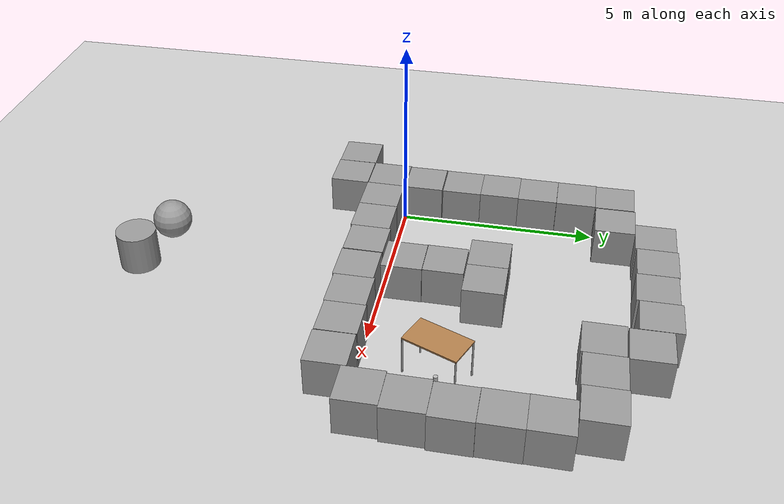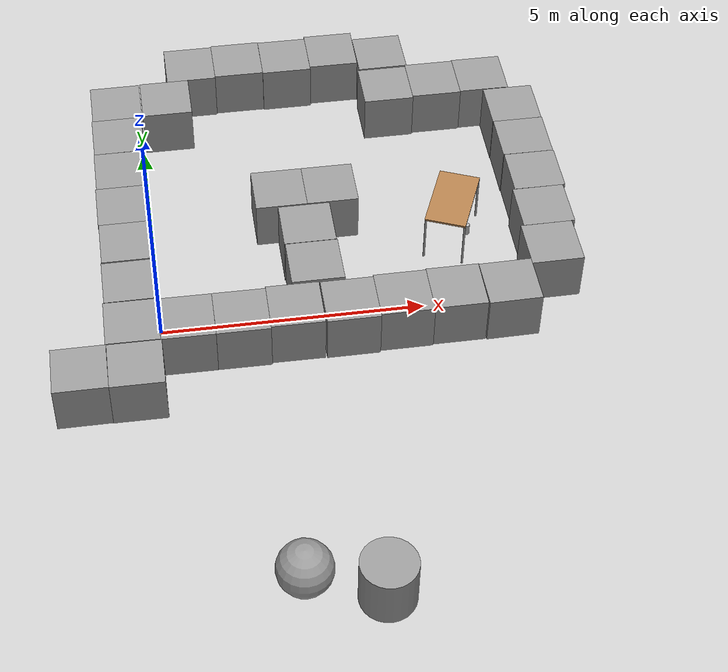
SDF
<sdf version="1.6">
 <world name="default">
  <light name="sun" type="directional">
   <pose>0 0 10 0 -0 0</pose>
   <diffuse>0.8 0.8 0.8 1</diffuse>
   <specular>0.1 0.1 0.1 1</specular>
   <attenuation>
    <range>1000</range>
    <constant>0.9</constant>
    <linear>0.01</linear>
    <quadratic>0.001</quadratic>
   </attenuation>
   <direction>-0.5 0.5 -1</direction>
  </light>
  <model name="ground_plane">
   <static>1</static>
   <link name="link">
    <collision name="collision">
     <geometry><plane><normal>0 0 1</normal><size>100 100</size></plane></geometry>
     <surface><friction><ode><mu>100</mu><mu2>50</mu2></ode></friction></surface>
    </collision>
    <visual name="visual">
     <cast_shadows>0</cast_shadows>
     <geometry><plane><normal>0 0 1</normal><size>100 100</size></plane></geometry>
     <material>
      <script><uri>file://media/materials/scripts/gazebo.material</uri><name>Gazebo/Grey</name></script>
     </material>
    </visual>
   </link>
  </model>
  <gravity>0 0 -9.8</gravity>
  <magnetic_field>6e-06 2.3e-05 -4.2e-05</magnetic_field>
  <atmosphere type="adiabatic"/>
  <physics name="default_physics" default="0" type="ode">
   <max_step_size>0.001</max_step_size>
   <real_time_factor>1</real_time_factor>
   <real_time_update_rate>1000</real_time_update_rate>
  </physics>
  <scene><ambient>0.4 0.4 0.4 1</ambient><background>0.7 0.7 0.7 1</background><shadows>1</shadows></scene>
  <spherical_coordinates>
   <surface_model>EARTH_WGS84</surface_model>
   <latitude_deg>0</latitude_deg>
   <longitude_deg>0</longitude_deg>
   <elevation>0</elevation>
   <heading_deg>0</heading_deg>
  </spherical_coordinates>
  <model name="unit_box_0">
   <pose>0.476189 -0.54612 0.499995 -1e-05 -0 -0.007371</pose>
   <link name="link">
    <inertial>
     <mass>1</mass>
     <inertia>
      <ixx>0.166667</ixx>
      <ixy>0</ixy>
      <ixz>0</ixz>
      <iyy>0.166667</iyy>
      <iyz>0</iyz>
      <izz>0.166667</izz>
     </inertia>
    </inertial>
    <collision name="collision"><geometry><box><size>1 1 1</size></box></geometry></collision>
    <visual name="visual">
     <geometry><box><size>1 1 1</size></box></geometry>
     <material>
      <script><name>Gazebo/Grey</name><uri>file://media/materials/scripts/gazebo.material</uri></script>
     </material>
    </visual>
   </link>
  </model>
  <model name="unit_box_1">
   <pose>-0.511666 -1.54013 0.499995 1e-05 -0 -0.004873</pose>
   <link name="link">
    <inertial>
     <mass>1</mass>
     <inertia>
      <ixx>0.166667</ixx>
      <ixy>0</ixy>
      <ixz>0</ixz>
      <iyy>0.166667</iyy>
      <iyz>0</iyz>
      <izz>0.166667</izz>
     </inertia>
    </inertial>
    <collision name="collision"><geometry><box><size>1 1 1</size></box></geometry></collision>
    <visual name="visual">
     <geometry><box><size>1 1 1</size></box></geometry>
     <material>
      <script><name>Gazebo/Grey</name><uri>file://media/materials/scripts/gazebo.material</uri></script>
     </material>
    </visual>
   </link>
  </model>
  <model name="unit_box_2">
   <pose>-1.5144 -1.5289 0.499995 -0 -1e-05 0.000587</pose>
   <link name="link">
    <inertial>
     <mass>1</mass>
     <inertia>
      <ixx>0.166667</ixx>
      <ixy>0</ixy>
      <ixz>0</ixz>
      <iyy>0.166667</iyy>
      <iyz>0</iyz>
      <izz>0.166667</izz>
     </inertia>
    </inertial>
    <collision name="collision"><geometry><box><size>1 1 1</size></box></geometry></collision>
    <visual name="visual">
     <geometry><box><size>1 1 1</size></box></geometry>
     <material>
      <script><name>Gazebo/Grey</name><uri>file://media/materials/scripts/gazebo.material</uri></script>
     </material>
    </visual>
   </link>
  </model>
  <model name="unit_box_3">
   <pose>1.47643 -0.550553 0.499995 -1e-05 -0 -0.006875</pose>
   <link name="link">
    <inertial>
     <mass>1</mass>
     <inertia>
      <ixx>0.166667</ixx>
      <ixy>0</ixy>
      <ixz>0</ixz>
      <iyy>0.166667</iyy>
      <iyz>0</iyz>
      <izz>0.166667</izz>
     </inertia>
    </inertial>
    <collision name="collision"><geometry><box><size>1 1 1</size></box></geometry></collision>
    <visual name="visual">
     <geometry><box><size>1 1 1</size></box></geometry>
     <material>
      <script><name>Gazebo/Grey</name><uri>file://media/materials/scripts/gazebo.material</uri></script>
     </material>
    </visual>
   </link>
  </model>
  <model name="unit_box_4">
   <pose>-0.52389 -0.525497 0.499995 0 1e-05 -0.007129</pose>
   <link name="link">
    <inertial>
     <mass>1</mass>
     <inertia>
      <ixx>0.166667</ixx>
      <ixy>0</ixy>
      <ixz>0</ixz>
      <iyy>0.166667</iyy>
      <iyz>0</iyz>
      <izz>0.166667</izz>
     </inertia>
    </inertial>
    <collision name="collision"><geometry><box><size>1 1 1</size></box></geometry></collision>
    <visual name="visual">
     <geometry><box><size>1 1 1</size></box></geometry>
     <material>
      <script><name>Gazebo/Grey</name><uri>file://media/materials/scripts/gazebo.material</uri></script>
     </material>
    </visual>
   </link>
  </model>
  <model name="unit_box_5">
   <pose>-0.499013 0.486937 0.499995 1e-05 -0 0.002113</pose>
   <link name="link">
    <inertial>
     <mass>1</mass>
     <inertia>
      <ixx>0.166667</ixx>
      <ixy>0</ixy>
      <ixz>0</ixz>
      <iyy>0.166667</iyy>
      <iyz>0</iyz>
      <izz>0.166667</izz>
     </inertia>
    </inertial>
    <collision name="collision"><geometry><box><size>1 1 1</size></box></geometry></collision>
    <visual name="visual">
     <geometry><box><size>1 1 1</size></box></geometry>
     <material>
      <script><name>Gazebo/Grey</name><uri>file://media/materials/scripts/gazebo.material</uri></script>
     </material>
    </visual>
   </link>
  </model>
  <model name="unit_box_6">
   <pose>2.47668 -0.520738 0.499995 0 1e-05 -0.006858</pose>
   <link name="link">
    <inertial>
     <mass>1</mass>
     <inertia>
      <ixx>0.166667</ixx>
      <ixy>0</ixy>
      <ixz>0</ixz>
      <iyy>0.166667</iyy>
      <iyz>0</iyz>
      <izz>0.166667</izz>
     </inertia>
    </inertial>
    <collision name="collision"><geometry><box><size>1 1 1</size></box></geometry></collision>
    <visual name="visual">
     <geometry><box><size>1 1 1</size></box></geometry>
     <material>
      <script><name>Gazebo/Grey</name><uri>file://media/materials/scripts/gazebo.material</uri></script>
     </material>
    </visual>
   </link>
  </model>
  <model name="unit_box_7">
   <pose>3.49882 -0.534335 0.499995 1e-05 -0 0.000512</pose>
   <link name="link">
    <inertial>
     <mass>1</mass>
     <inertia>
      <ixx>0.166667</ixx>
      <ixy>0</ixy>
      <ixz>0</ixz>
      <iyy>0.166667</iyy>
      <iyz>0</iyz>
      <izz>0.166667</izz>
     </inertia>
    </inertial>
    <collision name="collision"><geometry><box><size>1 1 1</size></box></geometry></collision>
    <visual name="visual">
     <geometry><box><size>1 1 1</size></box></geometry>
     <material>
      <script><name>Gazebo/Grey</name><uri>file://media/materials/scripts/gazebo.material</uri></script>
     </material>
    </visual>
   </link>
  </model>
  <model name="unit_box_8">
   <pose>2.97997 0.524005 0.499995 -0 -1e-05 0.002624</pose>
   <link name="link">
    <inertial>
     <mass>1</mass>
     <inertia>
      <ixx>0.166667</ixx>
      <ixy>0</ixy>
      <ixz>0</ixz>
      <iyy>0.166667</iyy>
      <iyz>0</iyz>
      <izz>0.166667</izz>
     </inertia>
    </inertial>
    <collision name="collision"><geometry><box><size>1 1 1</size></box></geometry></collision>
    <visual name="visual">
     <geometry><box><size>1 1 1</size></box></geometry>
     <material>
      <script><name>Gazebo/Grey</name><uri>file://media/materials/scripts/gazebo.material</uri></script>
     </material>
    </visual>
   </link>
  </model>
  <model name="unit_sphere_0">
   <pose>1.94378 -5.90161 0.5 0 -0 0</pose>
   <link name="link">
    <inertial>
     <mass>1</mass>
     <inertia><ixx>0.1</ixx><ixy>0</ixy><ixz>0</ixz><iyy>0.1</iyy><iyz>0</iyz><izz>0.1</izz></inertia>
    </inertial>
    <collision name="collision"><geometry><sphere><radius>0.5</radius></sphere></geometry></collision>
    <visual name="visual">
     <geometry><sphere><radius>0.5</radius></sphere></geometry>
     <material>
      <script><name>Gazebo/Grey</name><uri>file://media/materials/scripts/gazebo.material</uri></script>
     </material>
    </visual>
   </link>
  </model>
  <model name="unit_cylinder_0">
   <pose>3.26629 -6.3098 0.499993 1e-06 -1e-06 0</pose>
   <link name="link">
    <inertial>
     <mass>1</mass>
     <inertia><ixx>0.145833</ixx><ixy>0</ixy><ixz>0</ixz><iyy>0.145833</iyy><iyz>0</iyz><izz>0.125</izz></inertia>
    </inertial>
    <collision name="collision">
     <geometry><cylinder><radius>0.5</radius><length>1</length></cylinder></geometry>
    </collision>
    <visual name="visual">
     <geometry><cylinder><radius>0.5</radius><length>1</length></cylinder></geometry>
     <material>
      <script><name>Gazebo/Grey</name><uri>file://media/materials/scripts/gazebo.material</uri></script>
     </material>
    </visual>
   </link>
  </model>
  <model name="unit_box_9">
   <pose>-0.489619 1.51186 0.499995 0 1e-05 0.001087</pose>
   <link name="link">
    <inertial>
     <mass>1</mass>
     <inertia>
      <ixx>0.166667</ixx>
      <ixy>0</ixy>
      <ixz>0</ixz>
      <iyy>0.166667</iyy>
      <iyz>0</iyz>
      <izz>0.166667</izz>
     </inertia>
    </inertial>
    <collision name="collision"><geometry><box><size>1 1 1</size></box></geometry></collision>
    <visual name="visual">
     <geometry><box><size>1 1 1</size></box></geometry>
     <material>
      <script><name>Gazebo/Grey</name><uri>file://media/materials/scripts/gazebo.material</uri></script>
     </material>
    </visual>
   </link>
  </model>
  <model name="unit_box_10">
   <pose>-0.501165 2.51188 0.499995 0 -1e-05 0.001066</pose>
   <link name="link">
    <inertial>
     <mass>1</mass>
     <inertia>
      <ixx>0.166667</ixx>
      <ixy>0</ixy>
      <ixz>0</ixz>
      <iyy>0.166667</iyy>
      <iyz>0</iyz>
      <izz>0.166667</izz>
     </inertia>
    </inertial>
    <collision name="collision"><geometry><box><size>1 1 1</size></box></geometry></collision>
    <visual name="visual">
     <geometry><box><size>1 1 1</size></box></geometry>
     <material>
      <script><name>Gazebo/Grey</name><uri>file://media/materials/scripts/gazebo.material</uri></script>
     </material>
    </visual>
   </link>
  </model>
  <model name="unit_box_11">
   <pose>-0.484097 3.51218 0.499995 0 1e-05 0.00156</pose>
   <link name="link">
    <inertial>
     <mass>1</mass>
     <inertia>
      <ixx>0.166667</ixx>
      <ixy>0</ixy>
      <ixz>0</ixz>
      <iyy>0.166667</iyy>
      <iyz>0</iyz>
      <izz>0.166667</izz>
     </inertia>
    </inertial>
    <collision name="collision"><geometry><box><size>1 1 1</size></box></geometry></collision>
    <visual name="visual">
     <geometry><box><size>1 1 1</size></box></geometry>
     <material>
      <script><name>Gazebo/Grey</name><uri>file://media/materials/scripts/gazebo.material</uri></script>
     </material>
    </visual>
   </link>
  </model>
  <model name="unit_box_12">
   <pose>-0.477798 4.51406 0.499995 0 1e-05 0.005239</pose>
   <link name="link">
    <inertial>
     <mass>1</mass>
     <inertia>
      <ixx>0.166667</ixx>
      <ixy>0</ixy>
      <ixz>0</ixz>
      <iyy>0.166667</iyy>
      <iyz>0</iyz>
      <izz>0.166667</izz>
     </inertia>
    </inertial>
    <collision name="collision"><geometry><box><size>1 1 1</size></box></geometry></collision>
    <visual name="visual">
     <geometry><box><size>1 1 1</size></box></geometry>
     <material>
      <script><name>Gazebo/Grey</name><uri>file://media/materials/scripts/gazebo.material</uri></script>
     </material>
    </visual>
   </link>
  </model>
  <model name="unit_box_13">
   <pose>0.557548 5.53504 0.499995 0 -1e-05 0.001178</pose>
   <link name="link">
    <inertial>
     <mass>1</mass>
     <inertia>
      <ixx>0.166667</ixx>
      <ixy>0</ixy>
      <ixz>0</ixz>
      <iyy>0.166667</iyy>
      <iyz>0</iyz>
      <izz>0.166667</izz>
     </inertia>
    </inertial>
    <collision name="collision"><geometry><box><size>1 1 1</size></box></geometry></collision>
    <visual name="visual">
     <geometry><box><size>1 1 1</size></box></geometry>
     <material>
      <script><name>Gazebo/Grey</name><uri>file://media/materials/scripts/gazebo.material</uri></script>
     </material>
    </visual>
   </link>
  </model>
  <model name="unit_box_14">
   <pose>-0.463096 5.51417 0.499995 0 1e-05 0.005269</pose>
   <link name="link">
    <inertial>
     <mass>1</mass>
     <inertia>
      <ixx>0.166667</ixx>
      <ixy>0</ixy>
      <ixz>0</ixz>
      <iyy>0.166667</iyy>
      <iyz>0</iyz>
      <izz>0.166667</izz>
     </inertia>
    </inertial>
    <collision name="collision"><geometry><box><size>1 1 1</size></box></geometry></collision>
    <visual name="visual">
     <geometry><box><size>1 1 1</size></box></geometry>
     <material>
      <script><name>Gazebo/Grey</name><uri>file://media/materials/scripts/gazebo.material</uri></script>
     </material>
    </visual>
   </link>
  </model>
  <model name="unit_box_15">
   <pose>2.96525 1.53079 0.499995 -1e-05 0 0</pose>
   <link name="link">
    <inertial>
     <mass>1</mass>
     <inertia>
      <ixx>0.166667</ixx>
      <ixy>0</ixy>
      <ixz>0</ixz>
      <iyy>0.166667</iyy>
      <iyz>0</iyz>
      <izz>0.166667</izz>
     </inertia>
    </inertial>
    <collision name="collision"><geometry><box><size>1 1 1</size></box></geometry></collision>
    <visual name="visual">
     <geometry><box><size>1 1 1</size></box></geometry>
     <material>
      <script><name>Gazebo/Grey</name><uri>file://media/materials/scripts/gazebo.material</uri></script>
     </material>
    </visual>
   </link>
  </model>
  <model name="unit_box_16">
   <pose>1.13076 6.53622 0.499995 0 1e-05 0.000732</pose>
   <link name="link">
    <inertial>
     <mass>1</mass>
     <inertia>
      <ixx>0.166667</ixx>
      <ixy>0</ixy>
      <ixz>0</ixz>
      <iyy>0.166667</iyy>
      <iyz>0</iyz>
      <izz>0.166667</izz>
     </inertia>
    </inertial>
    <collision name="collision"><geometry><box><size>1 1 1</size></box></geometry></collision>
    <visual name="visual">
     <geometry><box><size>1 1 1</size></box></geometry>
     <material>
      <script><name>Gazebo/Grey</name><uri>file://media/materials/scripts/gazebo.material</uri></script>
     </material>
    </visual>
   </link>
  </model>
  <model name="unit_box_17">
   <pose>2.13075 6.56907 0.499995 0 1e-05 0.000728</pose>
   <link name="link">
    <inertial>
     <mass>1</mass>
     <inertia>
      <ixx>0.166667</ixx>
      <ixy>0</ixy>
      <ixz>0</ixz>
      <iyy>0.166667</iyy>
      <iyz>0</iyz>
      <izz>0.166667</izz>
     </inertia>
    </inertial>
    <collision name="collision"><geometry><box><size>1 1 1</size></box></geometry></collision>
    <visual name="visual">
     <geometry><box><size>1 1 1</size></box></geometry>
     <material>
      <script><name>Gazebo/Grey</name><uri>file://media/materials/scripts/gazebo.material</uri></script>
     </material>
    </visual>
   </link>
  </model>
  <model name="unit_box_18">
   <pose>3.13111 6.54891 0.499995 -1e-05 0 5.4e-05</pose>
   <link name="link">
    <inertial>
     <mass>1</mass>
     <inertia>
      <ixx>0.166667</ixx>
      <ixy>0</ixy>
      <ixz>0</ixz>
      <iyy>0.166667</iyy>
      <iyz>0</iyz>
      <izz>0.166667</izz>
     </inertia>
    </inertial>
    <collision name="collision"><geometry><box><size>1 1 1</size></box></geometry></collision>
    <visual name="visual">
     <geometry><box><size>1 1 1</size></box></geometry>
     <material>
      <script><name>Gazebo/Grey</name><uri>file://media/materials/scripts/gazebo.material</uri></script>
     </material>
    </visual>
   </link>
  </model>
  <model name="unit_box_19">
   <pose>4.49885 -0.496989 0.499995 -1e-05 -0 0.000612</pose>
   <link name="link">
    <inertial>
     <mass>1</mass>
     <inertia>
      <ixx>0.166667</ixx>
      <ixy>0</ixy>
      <ixz>0</ixz>
      <iyy>0.166667</iyy>
      <iyz>0</iyz>
      <izz>0.166667</izz>
     </inertia>
    </inertial>
    <collision name="collision"><geometry><box><size>1 1 1</size></box></geometry></collision>
    <visual name="visual">
     <geometry><box><size>1 1 1</size></box></geometry>
     <material>
      <script><name>Gazebo/Grey</name><uri>file://media/materials/scripts/gazebo.material</uri></script>
     </material>
    </visual>
   </link>
  </model>
  <model name="unit_box_20">
   <pose>5.49884 -0.475883 0.499995 -1e-05 -0 0.000612</pose>
   <link name="link">
    <inertial>
     <mass>1</mass>
     <inertia>
      <ixx>0.166667</ixx>
      <ixy>0</ixy>
      <ixz>0</ixz>
      <iyy>0.166667</iyy>
      <iyz>0</iyz>
      <izz>0.166667</izz>
     </inertia>
    </inertial>
    <collision name="collision"><geometry><box><size>1 1 1</size></box></geometry></collision>
    <visual name="visual">
     <geometry><box><size>1 1 1</size></box></geometry>
     <material>
      <script><name>Gazebo/Grey</name><uri>file://media/materials/scripts/gazebo.material</uri></script>
     </material>
    </visual>
   </link>
  </model>
  <model name="unit_box_21">
   <pose>4.13117 6.61069 0.499995 -1e-05 -0 -3.9e-05</pose>
   <link name="link">
    <inertial>
     <mass>1</mass>
     <inertia>
      <ixx>0.166667</ixx>
      <ixy>0</ixy>
      <ixz>0</ixz>
      <iyy>0.166667</iyy>
      <iyz>0</iyz>
      <izz>0.166667</izz>
     </inertia>
    </inertial>
    <collision name="collision"><geometry><box><size>1 1 1</size></box></geometry></collision>
    <visual name="visual">
     <geometry><box><size>1 1 1</size></box></geometry>
     <material>
      <script><name>Gazebo/Grey</name><uri>file://media/materials/scripts/gazebo.material</uri></script>
     </material>
    </visual>
   </link>
  </model>
  <model name="unit_box_22">
   <pose>2.54209 2.55729 0.499995 0 -1e-05 1.3e-05</pose>
   <link name="link">
    <inertial>
     <mass>1</mass>
     <inertia>
      <ixx>0.166667</ixx>
      <ixy>0</ixy>
      <ixz>0</ixz>
      <iyy>0.166667</iyy>
      <iyz>0</iyz>
      <izz>0.166667</izz>
     </inertia>
    </inertial>
    <collision name="collision"><geometry><box><size>1 1 1</size></box></geometry></collision>
    <visual name="visual">
     <geometry><box><size>1 1 1</size></box></geometry>
     <material>
      <script><name>Gazebo/Grey</name><uri>file://media/materials/scripts/gazebo.material</uri></script>
     </material>
    </visual>
   </link>
  </model>
  <model name="unit_box_23">
   <pose>3.5421 2.55659 0.499995 0 1e-05 1.7e-05</pose>
   <link name="link">
    <inertial>
     <mass>1</mass>
     <inertia>
      <ixx>0.166667</ixx>
      <ixy>0</ixy>
      <ixz>0</ixz>
      <iyy>0.166667</iyy>
      <iyz>0</iyz>
      <izz>0.166667</izz>
     </inertia>
    </inertial>
    <collision name="collision"><geometry><box><size>1 1 1</size></box></geometry></collision>
    <visual name="visual">
     <geometry><box><size>1 1 1</size></box></geometry>
     <material>
      <script><name>Gazebo/Grey</name><uri>file://media/materials/scripts/gazebo.material</uri></script>
     </material>
    </visual>
   </link>
  </model>
  <model name="unit_box_24">
   <pose>5.10734 5.35345 0.499995 0 1e-05 0.000359</pose>
   <link name="link">
    <inertial>
     <mass>1</mass>
     <inertia>
      <ixx>0.166667</ixx>
      <ixy>0</ixy>
      <ixz>0</ixz>
      <iyy>0.166667</iyy>
      <iyz>0</iyz>
      <izz>0.166667</izz>
     </inertia>
    </inertial>
    <collision name="collision"><geometry><box><size>1 1 1</size></box></geometry></collision>
    <visual name="visual">
     <geometry><box><size>1 1 1</size></box></geometry>
     <material>
      <script><name>Gazebo/Grey</name><uri>file://media/materials/scripts/gazebo.material</uri></script>
     </material>
    </visual>
   </link>
  </model>
  <model name="unit_box_25">
   <pose>5.13996 6.39077 0.499995 -0 -1e-05 0.010132</pose>
   <link name="link">
    <inertial>
     <mass>1</mass>
     <inertia>
      <ixx>0.166667</ixx>
      <ixy>0</ixy>
      <ixz>0</ixz>
      <iyy>0.166667</iyy>
      <iyz>0</iyz>
      <izz>0.166667</izz>
     </inertia>
    </inertial>
    <collision name="collision"><geometry><box><size>1 1 1</size></box></geometry></collision>
    <visual name="visual">
     <geometry><box><size>1 1 1</size></box></geometry>
     <material>
      <script><name>Gazebo/Grey</name><uri>file://media/materials/scripts/gazebo.material</uri></script>
     </material>
    </visual>
   </link>
  </model>
  <model name="unit_box_26">
   <pose>6.10736 5.39529 0.499995 1e-05 -0 0.00034</pose>
   <link name="link">
    <inertial>
     <mass>1</mass>
     <inertia>
      <ixx>0.166667</ixx>
      <ixy>0</ixy>
      <ixz>0</ixz>
      <iyy>0.166667</iyy>
      <iyz>0</iyz>
      <izz>0.166667</izz>
     </inertia>
    </inertial>
    <collision name="collision"><geometry><box><size>1 1 1</size></box></geometry></collision>
    <visual name="visual">
     <geometry><box><size>1 1 1</size></box></geometry>
     <material>
      <script><name>Gazebo/Grey</name><uri>file://media/materials/scripts/gazebo.material</uri></script>
     </material>
    </visual>
   </link>
  </model>
  <model name="unit_box_27">
   <pose>7.10736 5.41664 0.499995 1e-05 -0 0.000326</pose>
   <link name="link">
    <inertial>
     <mass>1</mass>
     <inertia>
      <ixx>0.166667</ixx>
      <ixy>0</ixy>
      <ixz>0</ixz>
      <iyy>0.166667</iyy>
      <iyz>0</iyz>
      <izz>0.166667</izz>
     </inertia>
    </inertial>
    <collision name="collision"><geometry><box><size>1 1 1</size></box></geometry></collision>
    <visual name="visual">
     <geometry><box><size>1 1 1</size></box></geometry>
     <material>
      <script><name>Gazebo/Grey</name><uri>file://media/materials/scripts/gazebo.material</uri></script>
     </material>
    </visual>
   </link>
  </model>
  <model name="unit_box_28">
   <pose>6.51066 -0.484366 0.499995 1e-05 -0 0.014212</pose>
   <link name="link">
    <inertial>
     <mass>1</mass>
     <inertia>
      <ixx>0.166667</ixx>
      <ixy>0</ixy>
      <ixz>0</ixz>
      <iyy>0.166667</iyy>
      <iyz>0</iyz>
      <izz>0.166667</izz>
     </inertia>
    </inertial>
    <collision name="collision"><geometry><box><size>1 1 1</size></box></geometry></collision>
    <visual name="visual">
     <geometry><box><size>1 1 1</size></box></geometry>
     <material>
      <script><name>Gazebo/Grey</name><uri>file://media/materials/scripts/gazebo.material</uri></script>
     </material>
    </visual>
   </link>
  </model>
  <model name="unit_box_29">
   <pose>7.50236 0.397209 0.499995 0 -1e-05 0.006566</pose>
   <link name="link">
    <inertial>
     <mass>1</mass>
     <inertia>
      <ixx>0.166667</ixx>
      <ixy>0</ixy>
      <ixz>0</ixz>
      <iyy>0.166667</iyy>
      <iyz>0</iyz>
      <izz>0.166667</izz>
     </inertia>
    </inertial>
    <collision name="collision"><geometry><box><size>1 1 1</size></box></geometry></collision>
    <visual name="visual">
     <geometry><box><size>1 1 1</size></box></geometry>
     <material>
      <script><name>Gazebo/Grey</name><uri>file://media/materials/scripts/gazebo.material</uri></script>
     </material>
    </visual>
   </link>
  </model>
  <model name="unit_box_30">
   <pose>7.58251 4.40281 0.499995 1e-05 -0 0.000239</pose>
   <link name="link">
    <inertial>
     <mass>1</mass>
     <inertia>
      <ixx>0.166667</ixx>
      <ixy>0</ixy>
      <ixz>0</ixz>
      <iyy>0.166667</iyy>
      <iyz>0</iyz>
      <izz>0.166667</izz>
     </inertia>
    </inertial>
    <collision name="collision"><geometry><box><size>1 1 1</size></box></geometry></collision>
    <visual name="visual">
     <geometry><box><size>1 1 1</size></box></geometry>
     <material>
      <script><name>Gazebo/Grey</name><uri>file://media/materials/scripts/gazebo.material</uri></script>
     </material>
    </visual>
   </link>
  </model>
  <model name="unit_box_31">
   <pose>7.59139 3.40239 0.499995 0 1e-05 0.000204</pose>
   <link name="link">
    <inertial>
     <mass>1</mass>
     <inertia>
      <ixx>0.166667</ixx>
      <ixy>0</ixy>
      <ixz>0</ixz>
      <iyy>0.166667</iyy>
      <iyz>0</iyz>
      <izz>0.166667</izz>
     </inertia>
    </inertial>
    <collision name="collision"><geometry><box><size>1 1 1</size></box></geometry></collision>
    <visual name="visual">
     <geometry><box><size>1 1 1</size></box></geometry>
     <material>
      <script><name>Gazebo/Grey</name><uri>file://media/materials/scripts/gazebo.material</uri></script>
     </material>
    </visual>
   </link>
  </model>
  <model name="unit_box_32">
   <pose>7.60316 2.40041 0.499995 0 1e-05 0.001745</pose>
   <link name="link">
    <inertial>
     <mass>1</mass>
     <inertia>
      <ixx>0.166667</ixx>
      <ixy>0</ixy>
      <ixz>0</ixz>
      <iyy>0.166667</iyy>
      <iyz>0</iyz>
      <izz>0.166667</izz>
     </inertia>
    </inertial>
    <collision name="collision"><geometry><box><size>1 1 1</size></box></geometry></collision>
    <visual name="visual">
     <geometry><box><size>1 1 1</size></box></geometry>
     <material>
      <script><name>Gazebo/Grey</name><uri>file://media/materials/scripts/gazebo.material</uri></script>
     </material>
    </visual>
   </link>
  </model>
  <model name="unit_box_33">
   <pose>7.55869 1.3987 0.499995 -0 -1e-05 0.005009</pose>
   <link name="link">
    <inertial>
     <mass>1</mass>
     <inertia>
      <ixx>0.166667</ixx>
      <ixy>0</ixy>
      <ixz>0</ixz>
      <iyy>0.166667</iyy>
      <iyz>0</iyz>
      <izz>0.166667</izz>
     </inertia>
    </inertial>
    <collision name="collision"><geometry><box><size>1 1 1</size></box></geometry></collision>
    <visual name="visual">
     <geometry><box><size>1 1 1</size></box></geometry>
     <material>
      <script><name>Gazebo/Grey</name><uri>file://media/materials/scripts/gazebo.material</uri></script>
     </material>
    </visual>
   </link>
  </model>
  <model name="beer">
   <link name="link">
    <pose>0 0 0.115 0 -0 0</pose>
    <inertial>
     <mass>0.39</mass>
     <inertia><ixx>0.00058</ixx><ixy>0</ixy><ixz>0</ixz><iyy>0.00058</iyy><iyz>0</iyz><izz>0.00019</izz></inertia>
    </inertial>
    <collision name="collision">
     <geometry><cylinder><radius>0.055</radius><length>0.23</length></cylinder></geometry>
    </collision>
    <visual name="visual">
     <geometry><cylinder><radius>0.055</radius><length>0.23</length></cylinder></geometry>
     <material>
      <script>
       <uri>model://beer/materials/scripts</uri>
       <uri>model://beer/materials/textures</uri>
       <name>Beer/Diffuse</name>
      </script>
     </material>
    </visual>
   </link>
   <pose>6.18069 1.8139 -7e-06 -1e-06 -0 -7e-06</pose>
  </model>
  <model name="table">
   <static>0</static>
   <link name="link">
    <collision name="surface">
     <pose>0 0 1 0 -0 0</pose>
     <geometry><box><size>1.5 0.8 0.03</size></box></geometry>
     <surface><friction><ode><mu>0.6</mu><mu2>0.6</mu2></ode></friction></surface>
    </collision>
    <visual name="visual1">
     <pose>0 0 1 0 -0 0</pose>
     <geometry><box><size>1.4 0.8 0.04</size></box></geometry>
     <material>
      <script><uri>file://media/materials/scripts/gazebo.material</uri><name>Gazebo/Wood</name></script>
     </material>
    </visual>
    <collision name="front_left_leg">
     <pose>0.68 0.38 0.5 0 -0 0</pose>
     <geometry><cylinder><radius>0.02</radius><length>1</length></cylinder></geometry>
    </collision>
    <visual name="front_left_leg">
     <pose>0.68 0.38 0.5 0 -0 0</pose>
     <geometry><cylinder><radius>0.02</radius><length>1</length></cylinder></geometry>
     <material>
      <script><uri>file://media/materials/scripts/gazebo.material</uri><name>Gazebo/Grey</name></script>
     </material>
    </visual>
    <collision name="front_right_leg">
     <pose>0.68 -0.38 0.5 0 -0 0</pose>
     <geometry><cylinder><radius>0.02</radius><length>1</length></cylinder></geometry>
    </collision>
    <visual name="front_right_leg">
     <pose>0.68 -0.38 0.5 0 -0 0</pose>
     <geometry><cylinder><radius>0.02</radius><length>1</length></cylinder></geometry>
     <material>
      <script><uri>file://media/materials/scripts/gazebo.material</uri><name>Gazebo/Grey</name></script>
     </material>
    </visual>
    <collision name="back_right_leg">
     <pose>-0.68 -0.38 0.5 0 -0 0</pose>
     <geometry><cylinder><radius>0.02</radius><length>1</length></cylinder></geometry>
    </collision>
    <visual name="back_right_leg">
     <pose>-0.68 -0.38 0.5 0 -0 0</pose>
     <geometry><cylinder><radius>0.02</radius><length>1</length></cylinder></geometry>
     <material>
      <script><uri>file://media/materials/scripts/gazebo.material</uri><name>Gazebo/Grey</name></script>
     </material>
    </visual>
    <collision name="back_left_leg">
     <pose>-0.68 0.38 0.5 0 -0 0</pose>
     <geometry><cylinder><radius>0.02</radius><length>1</length></cylinder></geometry>
    </collision>
    <visual name="back_left_leg">
     <pose>-0.68 0.38 0.5 0 -0 0</pose>
     <geometry><cylinder><radius>0.02</radius><length>1</length></cylinder></geometry>
     <material>
      <script><uri>file://media/materials/scripts/gazebo.material</uri><name>Gazebo/Grey</name></script>
     </material>
    </visual>
    <inertial>
     <inertia><ixx>1</ixx><ixy>0</ixy><ixz>0</ixz><iyy>1</iyy><iyz>0</iyz><izz>1</izz></inertia>
     <mass>1</mass>
    </inertial>
   </link>
   <pose>5.84652 1.79469 -8e-06 0 -0 1.17551</pose>
  </model>
 </world>
</sdf>
